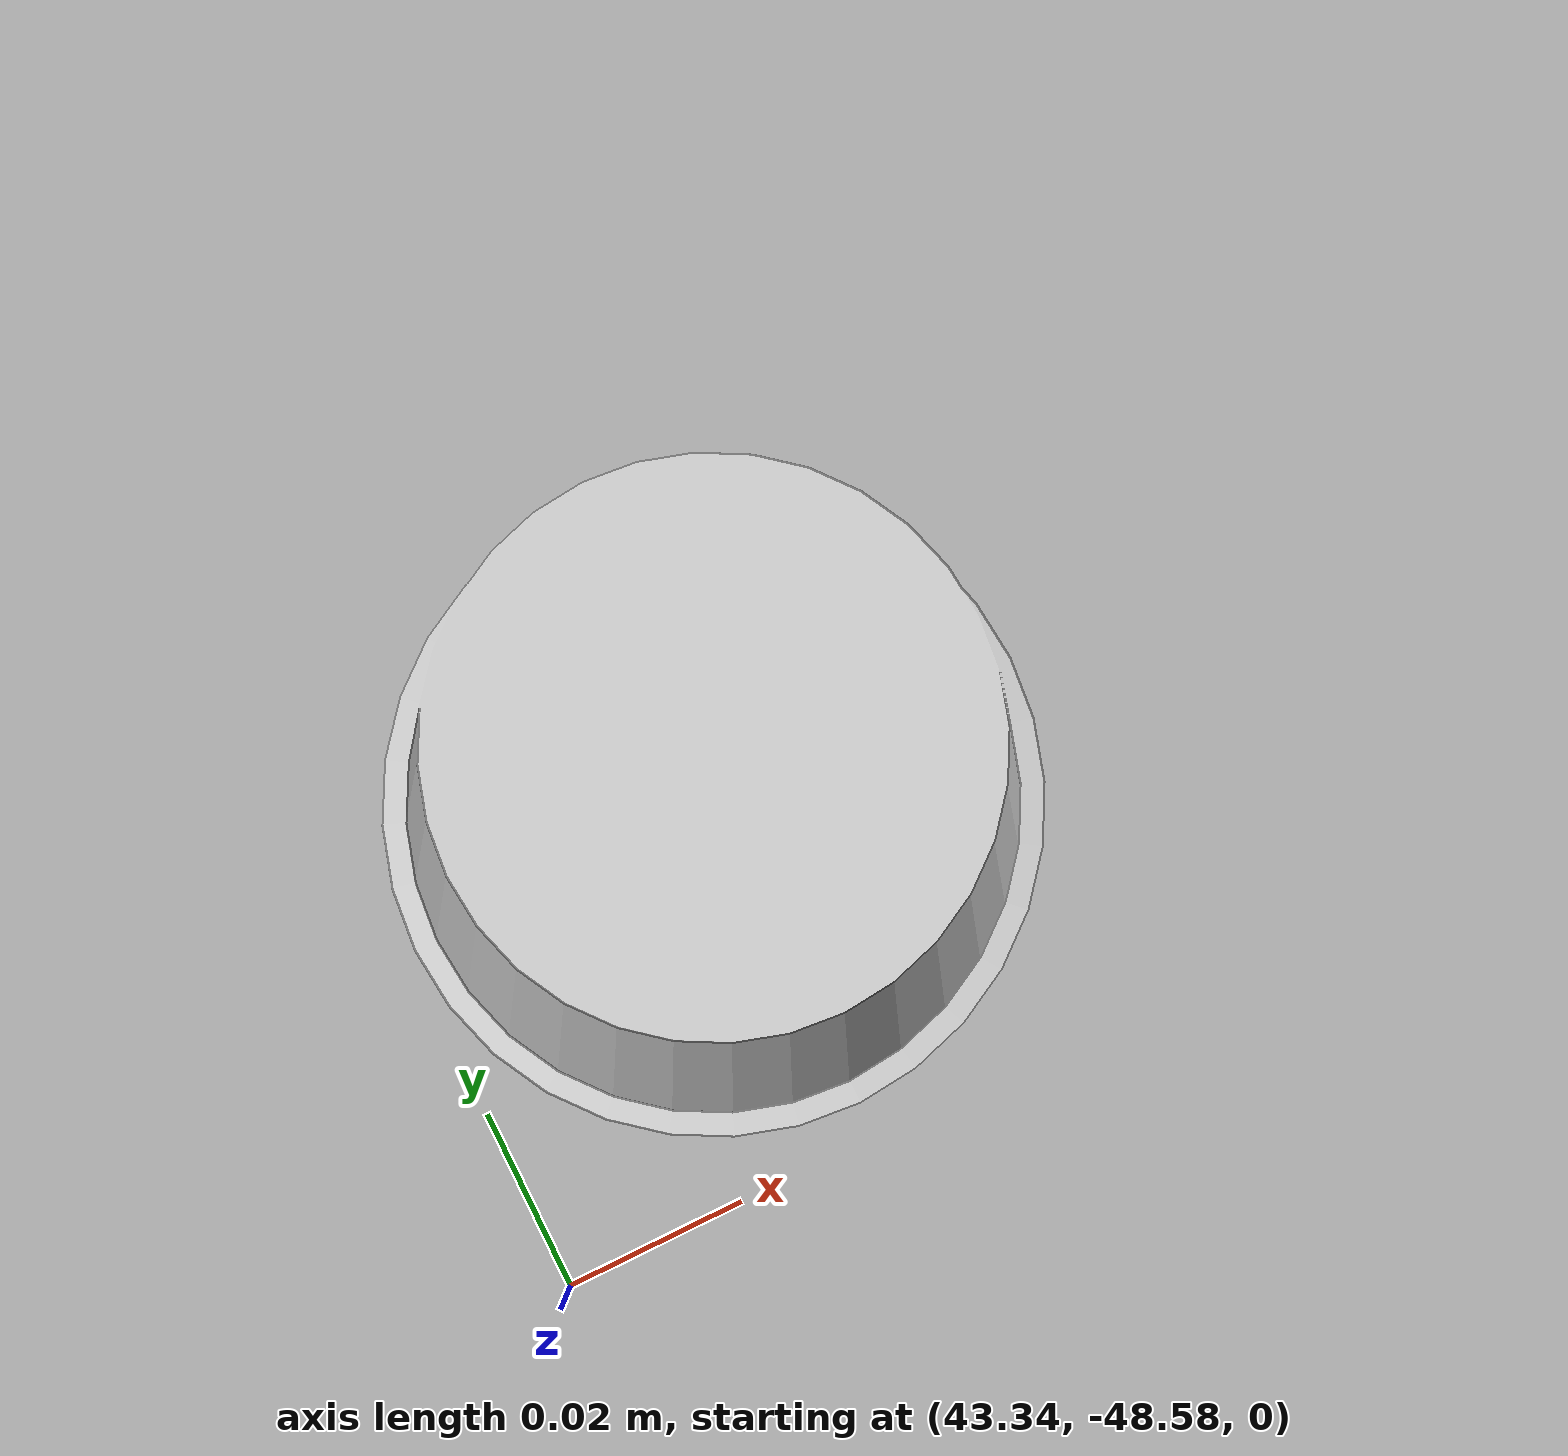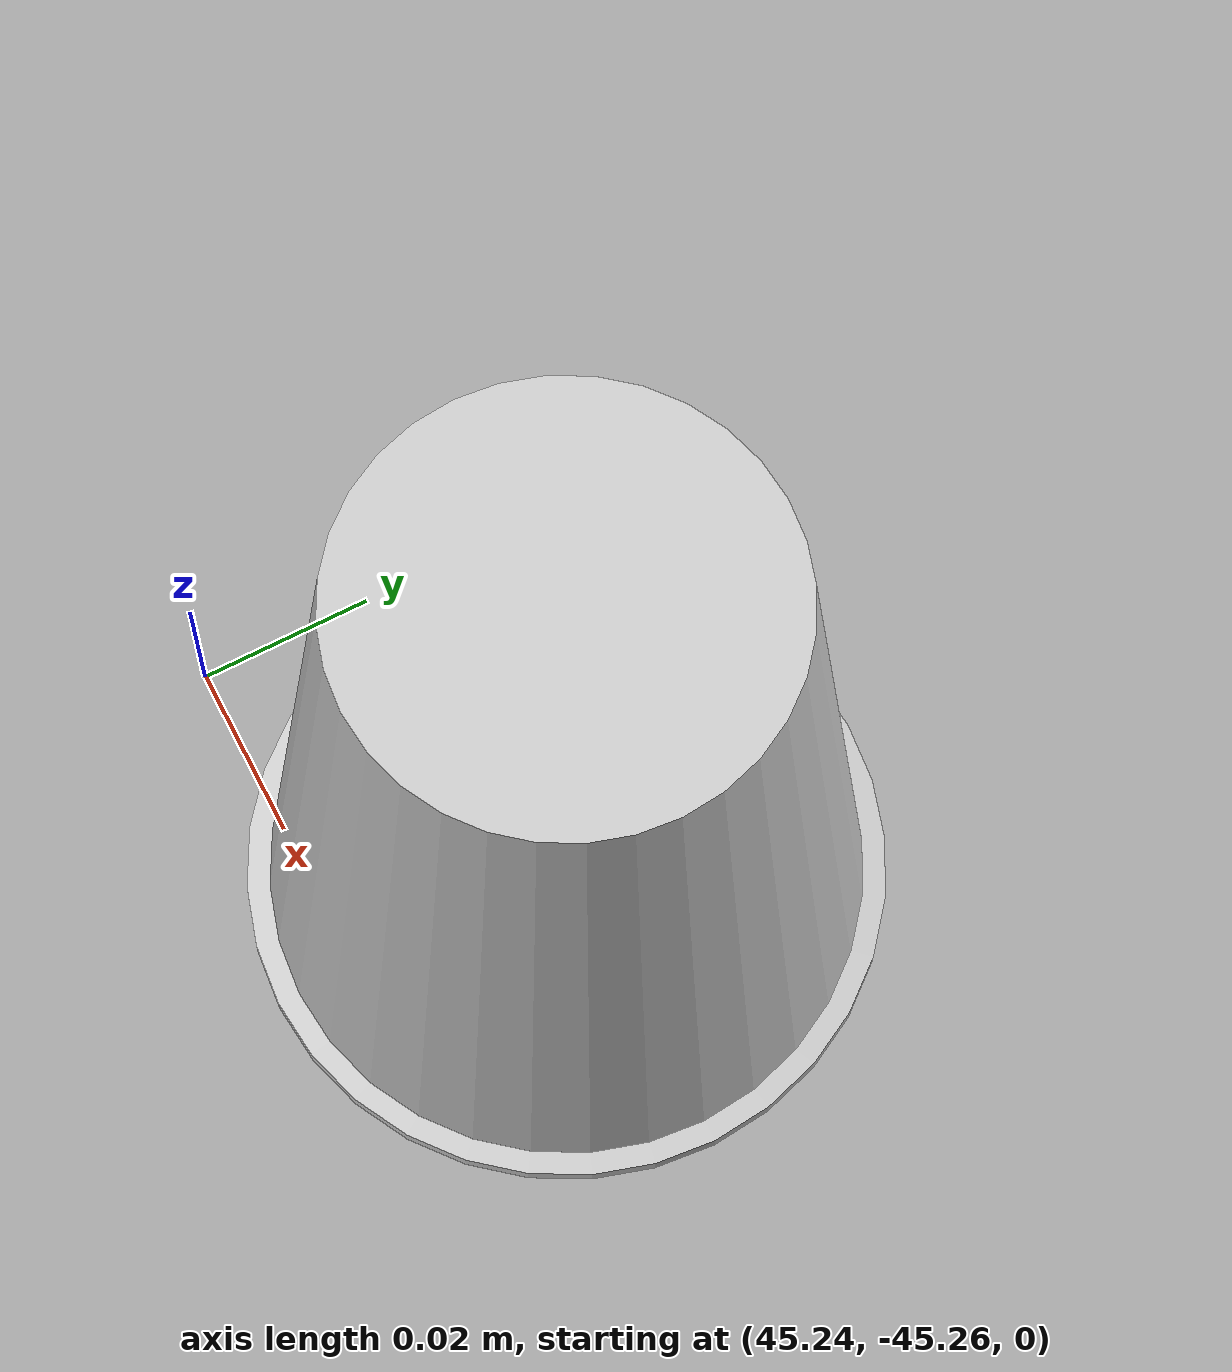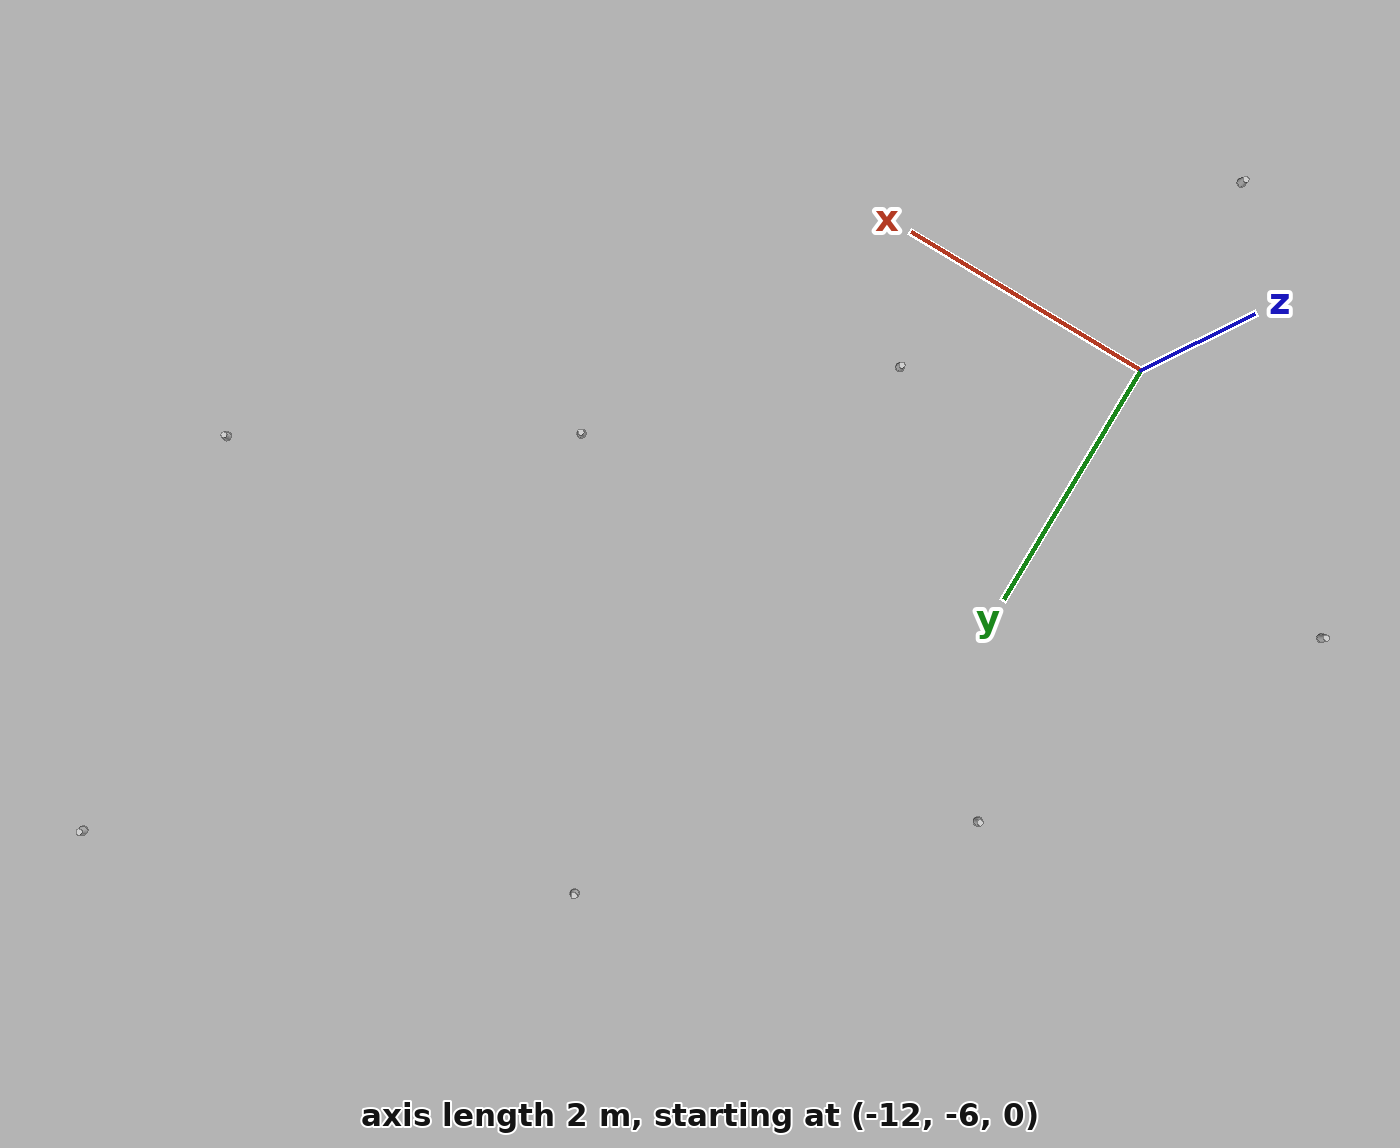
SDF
<?xml version='1.0' encoding='UTF-8'?>
<sdf version="1.4">
  <model name="some track">
    <include>
      <uri>model://cone_yellow</uri>
      <pose>4.016633257935067 -1.7042488960355349 0 0 0 0</pose>
      <name>cone_right</name>
    </include>
    <include>
      <uri>model://cone_yellow</uri>
      <pose>7.807787396695257 -2.3192877109654737 0 0 0 0</pose>
      <name>cone_right</name>
    </include>
    <include>
      <uri>model://cone_yellow</uri>
      <pose>10.70273189557841 -4.247341019404462 0 0 0 0</pose>
      <name>cone_right</name>
    </include>
    <include>
      <uri>model://cone_yellow</uri>
      <pose>12.614284638944838 -7.186668295840848 0 0 0 0</pose>
      <name>cone_right</name>
    </include>
    <include>
      <uri>model://cone_yellow</uri>
      <pose>13.41599155651475 -10.591521635098303 0 0 0 0</pose>
      <name>cone_right</name>
    </include>
    <include>
      <uri>model://cone_yellow</uri>
      <pose>14.333930177347527 -14.452732447040596 0 0 0 0</pose>
      <name>cone_right</name>
    </include>
    <include>
      <uri>model://cone_yellow</uri>
      <pose>15.297510910633767 -18.512037058971032 0 0 0 0</pose>
      <name>cone_right</name>
    </include>
    <include>
      <uri>model://cone_yellow</uri>
      <pose>16.629951078886382 -22.552195208824223 0 0 0 0</pose>
      <name>cone_right</name>
    </include>
    <include>
      <uri>model://cone_yellow</uri>
      <pose>24.768174219687882 -27.174490341212227 0 0 0 0</pose>
      <name>cone_right</name>
    </include>
    <include>
      <uri>model://cone_yellow</uri>
      <pose>28.796021756993248 -28.081478601205628 0 0 0 0</pose>
      <name>cone_right</name>
    </include>
    <include>
      <uri>model://cone_yellow</uri>
      <pose>32.72763841182436 -29.11269529682348 0 0 0 0</pose>
      <name>cone_right</name>
    </include>
    <include>
      <uri>model://cone_yellow</uri>
      <pose>41.46431769941738 -27.87742427210796 0 0 0 0</pose>
      <name>cone_right</name>
    </include>
    <include>
      <uri>model://cone_yellow</uri>
      <pose>46.880692206345906 -30.97590089180218 0 0 0 0</pose>
      <name>cone_right</name>
    </include>
    <include>
      <uri>model://cone_yellow</uri>
      <pose>47.572905593306416 -34.22353262884533 0 0 0 0</pose>
      <name>cone_right</name>
    </include>
    <include>
      <uri>model://cone_yellow</uri>
      <pose>47.252435623201876 -37.73201334105033 0 0 0 0</pose>
      <name>cone_right</name>
    </include>
    <include>
      <uri>model://cone_yellow</uri>
      <pose>46.38686972369829 -41.452612168465784 0 0 0 0</pose>
      <name>cone_right</name>
    </include>
    <include>
      <uri>model://cone_yellow</uri>
      <pose>45.278204668787446 -45.234381133229896 0 0 0 0</pose>
      <name>cone_right</name>
    </include>
    <include>
      <uri>model://cone_yellow</uri>
      <pose>43.375843219123006 -48.541064949294544 0 0 0 0</pose>
      <name>cone_right</name>
    </include>
    <include>
      <uri>model://cone_yellow</uri>
      <pose>40.59232080140645 -49.922333994551586 0 0 0 0</pose>
      <name>cone_right</name>
    </include>
    <include>
      <uri>model://cone_yellow</uri>
      <pose>35.52844617664533 -47.153467004760806 0 0 0 0</pose>
      <name>cone_right</name>
    </include>
    <include>
      <uri>model://cone_yellow</uri>
      <pose>34.81066937539569 -43.878584269161905 0 0 0 0</pose>
      <name>cone_right</name>
    </include>
    <include>
      <uri>model://cone_yellow</uri>
      <pose>33.339851593680024 -39.97824347966362 0 0 0 0</pose>
      <name>cone_right</name>
    </include>
    <include>
      <uri>model://cone_yellow</uri>
      <pose>31.179743160429513 -36.24911773490069 0 0 0 0</pose>
      <name>cone_right</name>
    </include>
    <include>
      <uri>model://cone_yellow</uri>
      <pose>27.830211307908606 -33.11544310898994 0 0 0 0</pose>
      <name>cone_right</name>
    </include>
    <include>
      <uri>model://cone_yellow</uri>
      <pose>23.99248315415697 -30.881729042462933 0 0 0 0</pose>
      <name>cone_right</name>
    </include>
    <include>
      <uri>model://cone_yellow</uri>
      <pose>19.979036396931217 -29.38713920288647 0 0 0 0</pose>
      <name>cone_right</name>
    </include>
    <include>
      <uri>model://cone_yellow</uri>
      <pose>15.8791496556233 -28.245889319297287 0 0 0 0</pose>
      <name>cone_right</name>
    </include>
    <include>
      <uri>model://cone_yellow</uri>
      <pose>11.624007426421665 -27.386126143751852 0 0 0 0</pose>
      <name>cone_right</name>
    </include>
    <include>
      <uri>model://cone_yellow</uri>
      <pose>3.425905654413868 -31.424114495551446 0 0 0 0</pose>
      <name>cone_right</name>
    </include>
    <include>
      <uri>model://cone_yellow</uri>
      <pose>0.6132255933542867 -34.80931036340649 0 0 0 0</pose>
      <name>cone_right</name>
    </include>
    <include>
      <uri>model://cone_yellow</uri>
      <pose>-1.7316698593155349 -38.246188152714005 0 0 0 0</pose>
      <name>cone_right</name>
    </include>
    <include>
      <uri>model://cone_yellow</uri>
      <pose>-3.5860590779807624 -42.00991121154241 0 0 0 0</pose>
      <name>cone_right</name>
    </include>
    <include>
      <uri>model://cone_yellow</uri>
      <pose>-5.066786551680005 -45.924165233006114 0 0 0 0</pose>
      <name>cone_right</name>
    </include>
    <include>
      <uri>model://cone_yellow</uri>
      <pose>-6.579335747946277 -49.712631094111075 0 0 0 0</pose>
      <name>cone_right</name>
    </include>
    <include>
      <uri>model://cone_yellow</uri>
      <pose>-8.526754198466778 -53.163422284748954 0 0 0 0</pose>
      <name>cone_right</name>
    </include>
    <include>
      <uri>model://cone_yellow</uri>
      <pose>-11.119816781987117 -55.70165310205272 0 0 0 0</pose>
      <name>cone_right</name>
    </include>
    <include>
      <uri>model://cone_yellow</uri>
      <pose>-14.346628206659652 -56.7512808025184 0 0 0 0</pose>
      <name>cone_right</name>
    </include>
    <include>
      <uri>model://cone_yellow</uri>
      <pose>-17.610250694613537 -56.163866050791675 0 0 0 0</pose>
      <name>cone_right</name>
    </include>
    <include>
      <uri>model://cone_yellow</uri>
      <pose>-20.41020975684232 -54.17749367735474 0 0 0 0</pose>
      <name>cone_right</name>
    </include>
    <include>
      <uri>model://cone_yellow</uri>
      <pose>-22.611202695684778 -51.33509539129395 0 0 0 0</pose>
      <name>cone_right</name>
    </include>
    <include>
      <uri>model://cone_yellow</uri>
      <pose>-24.26160726778396 -48.00790453257208 0 0 0 0</pose>
      <name>cone_right</name>
    </include>
    <include>
      <uri>model://cone_yellow</uri>
      <pose>-25.65681008625586 -44.364604210206494 0 0 0 0</pose>
      <name>cone_right</name>
    </include>
    <include>
      <uri>model://cone_yellow</uri>
      <pose>-26.679234155614544 -40.603182048810815 0 0 0 0</pose>
      <name>cone_right</name>
    </include>
    <include>
      <uri>model://cone_yellow</uri>
      <pose>-27.24983324079663 -36.77677879790706 0 0 0 0</pose>
      <name>cone_right</name>
    </include>
    <include>
      <uri>model://cone_yellow</uri>
      <pose>-27.530441710199433 -32.85165317868586 0 0 0 0</pose>
      <name>cone_right</name>
    </include>
    <include>
      <uri>model://cone_yellow</uri>
      <pose>-27.800759345626552 -28.841571678061985 0 0 0 0</pose>
      <name>cone_right</name>
    </include>
    <include>
      <uri>model://cone_yellow</uri>
      <pose>-28.17622914504249 -24.793430232454167 0 0 0 0</pose>
      <name>cone_right</name>
    </include>
    <include>
      <uri>model://cone_yellow</uri>
      <pose>-28.573962423229936 -20.65991161596328 0 0 0 0</pose>
      <name>cone_right</name>
    </include>
    <include>
      <uri>model://cone_yellow</uri>
      <pose>-29.300555554557196 -16.435196864742935 0 0 0 0</pose>
      <name>cone_right</name>
    </include>
    <include>
      <uri>model://cone_yellow</uri>
      <pose>-35.5485337607309 -9.731440607634285 0 0 0 0</pose>
      <name>cone_right</name>
    </include>
    <include>
      <uri>model://cone_yellow</uri>
      <pose>-44.62675523787628 -9.344540037681911 0 0 0 0</pose>
      <name>cone_right</name>
    </include>
    <include>
      <uri>model://cone_yellow</uri>
      <pose>-48.56649288324214 -9.438959337510092 0 0 0 0</pose>
      <name>cone_right</name>
    </include>
    <include>
      <uri>model://cone_yellow</uri>
      <pose>-54.901416368877705 -7.298260184370646 0 0 0 0</pose>
      <name>cone_right</name>
    </include>
    <include>
      <uri>model://cone_yellow</uri>
      <pose>-56.51731377310125 -4.0938047303237735 0 0 0 0</pose>
      <name>cone_right</name>
    </include>
    <include>
      <uri>model://cone_yellow</uri>
      <pose>-38.47531187371874 -0.29547417276689414 0 0 0 0</pose>
      <name>cone_right</name>
    </include>
    <include>
      <uri>model://cone_yellow</uri>
      <pose>-35.67329428653997 -3.138058325660965 0 0 0 0</pose>
      <name>cone_right</name>
    </include>
    <include>
      <uri>model://cone_yellow</uri>
      <pose>-33.14834288278659 -6.148322561516451 0 0 0 0</pose>
      <name>cone_right</name>
    </include>
    <include>
      <uri>model://cone_yellow</uri>
      <pose>-30.890283289375162 -9.340144778413631 0 0 0 0</pose>
      <name>cone_right</name>
    </include>
    <include>
      <uri>model://cone_yellow</uri>
      <pose>-28.853769730251447 -12.753293274964909 0 0 0 0</pose>
      <name>cone_right</name>
    </include>
    <include>
      <uri>model://cone_yellow</uri>
      <pose>-27.333719571161236 -16.314910883804004 0 0 0 0</pose>
      <name>cone_right</name>
    </include>
    <include>
      <uri>model://cone_yellow</uri>
      <pose>-26.84322514898085 -19.87745291325841 0 0 0 0</pose>
      <name>cone_right</name>
    </include>
    <include>
      <uri>model://cone_yellow</uri>
      <pose>-26.914808142956055 -23.683764743695196 0 0 0 0</pose>
      <name>cone_right</name>
    </include>
    <include>
      <uri>model://cone_yellow</uri>
      <pose>-26.365470697756876 -27.93850365923331 0 0 0 0</pose>
      <name>cone_right</name>
    </include>
    <include>
      <uri>model://cone_yellow</uri>
      <pose>-24.99809550898046 -32.10079961265011 0 0 0 0</pose>
      <name>cone_right</name>
    </include>
    <include>
      <uri>model://cone_yellow</uri>
      <pose>-23.633648668435452 -35.83196901263069 0 0 0 0</pose>
      <name>cone_right</name>
    </include>
    <include>
      <uri>model://cone_yellow</uri>
      <pose>-22.18276948830579 -39.64105852086057 0 0 0 0</pose>
      <name>cone_right</name>
    </include>
    <include>
      <uri>model://cone_yellow</uri>
      <pose>-7.879239039991343 -46.297502603852955 0 0 0 0</pose>
      <name>cone_right</name>
    </include>
    <include>
      <uri>model://cone_yellow</uri>
      <pose>-5.191340184367389 -41.40849674218456 0 0 0 0</pose>
      <name>cone_right</name>
    </include>
    <include>
      <uri>model://cone_yellow</uri>
      <pose>-5.318716625680469 -32.53778440303023 0 0 0 0</pose>
      <name>cone_right</name>
    </include>
    <include>
      <uri>model://cone_yellow</uri>
      <pose>-7.217504238258462 -28.560255430963398 0 0 0 0</pose>
      <name>cone_right</name>
    </include>
    <include>
      <uri>model://cone_yellow</uri>
      <pose>-8.475825188457115 -24.910561992595472 0 0 0 0</pose>
      <name>cone_right</name>
    </include>
    <include>
      <uri>model://cone_yellow</uri>
      <pose>-12.430392682297562 -17.396296318292514 0 0 0 0</pose>
      <name>cone_right</name>
    </include>
    <include>
      <uri>model://cone_yellow</uri>
      <pose>-11.916227535809204 -7.612266665163528 0 0 0 0</pose>
      <name>cone_right</name>
    </include>
    <include>
      <uri>model://cone_yellow</uri>
      <pose>-3.743567757640664 -1.7382385889287997 0 0 0 0</pose>
      <name>cone_right</name>
    </include>
    <include>
      <uri>model://cone_yellow</uri>
      <pose>18.523577008335785 -25.097905140863368 0 0 0 0</pose>
      <name>cone_right</name>
    </include>
    <include>
      <uri>model://cone_yellow</uri>
      <pose>21.478252626332726 -26.364194691433475 0 0 0 0</pose>
      <name>cone_right</name>
    </include>
    <include>
      <uri>model://cone_yellow</uri>
      <pose>36.13731290966874 -29.415600761210094 0 0 0 0</pose>
      <name>cone_right</name>
    </include>
    <include>
      <uri>model://cone_yellow</uri>
      <pose>39.08319485023117 -28.492264630586043 0 0 0 0</pose>
      <name>cone_right</name>
    </include>
    <include>
      <uri>model://cone_yellow</uri>
      <pose>44.445506069152955 -28.83118761504131 0 0 0 0</pose>
      <name>cone_right</name>
    </include>
    <include>
      <uri>model://cone_yellow</uri>
      <pose>8.346836806091762 -27.434487353150182 0 0 0 0</pose>
      <name>cone_right</name>
    </include>
    <include>
      <uri>model://cone_yellow</uri>
      <pose>5.729481582512214 -29.190434528463037 0 0 0 0</pose>
      <name>cone_right</name>
    </include>
    <include>
      <uri>model://cone_yellow</uri>
      <pose>-30.70114988818697 -13.561474391763419 0 0 0 0</pose>
      <name>cone_right</name>
    </include>
    <include>
      <uri>model://cone_yellow</uri>
      <pose>-32.81745452390035 -11.37462626819294 0 0 0 0</pose>
      <name>cone_right</name>
    </include>
    <include>
      <uri>model://cone_yellow</uri>
      <pose>-38.21403134496944 -9.187778144622463 0 0 0 0</pose>
      <name>cone_right</name>
    </include>
    <include>
      <uri>model://cone_yellow</uri>
      <pose>-41.00049911532537 -9.293593376408133 0 0 0 0</pose>
      <name>cone_right</name>
    </include>
    <include>
      <uri>model://cone_yellow</uri>
      <pose>-51.2375816629105 -9.44202735636442 0 0 0 0</pose>
      <name>cone_right</name>
    </include>
    <include>
      <uri>model://cone_yellow</uri>
      <pose>-52.981761618144986 -8.777577849608427 0 0 0 0</pose>
      <name>cone_right</name>
    </include>
    <include>
      <uri>model://cone_yellow</uri>
      <pose>-56.885402470336444 -0.8595545607661919 0 0 0 0</pose>
      <name>cone_right</name>
    </include>
    <include>
      <uri>model://cone_yellow</uri>
      <pose>-44.852348794384255 5.3119816564986735 0 0 0 0</pose>
      <name>cone_right</name>
    </include>
    <include>
      <uri>model://cone_yellow</uri>
      <pose>-42.97781676577577 3.7258391707530336 0 0 0 0</pose>
      <name>cone_right</name>
    </include>
    <include>
      <uri>model://cone_yellow</uri>
      <pose>-54.436043993532024 3.822720032808519 0 0 0 0</pose>
      <name>cone_right</name>
    </include>
    <include>
      <uri>model://cone_yellow</uri>
      <pose>-52.5585079071854 5.105703025145388 0 0 0 0</pose>
      <name>cone_right</name>
    </include>
    <include>
      <uri>model://cone_yellow</uri>
      <pose>-55.95176322990561 1.7183150026950003 0 0 0 0</pose>
      <name>cone_right</name>
    </include>
    <include>
      <uri>model://cone_yellow</uri>
      <pose>-49.90518434071636 5.7520839382053595 0 0 0 0</pose>
      <name>cone_right</name>
    </include>
    <include>
      <uri>model://cone_yellow</uri>
      <pose>-47.29749533190157 5.79282907896809 0 0 0 0</pose>
      <name>cone_right</name>
    </include>
    <include>
      <uri>model://cone_yellow</uri>
      <pose>-40.73752766910191 1.7183150026950003 0 0 0 0</pose>
      <name>cone_right</name>
    </include>
    <include>
      <uri>model://cone_yellow</uri>
      <pose>-15.14957927010694 -47.86852130554848 0 0 0 0</pose>
      <name>cone_right</name>
    </include>
    <include>
      <uri>model://cone_yellow</uri>
      <pose>-12.338164557478507 -48.0315018685994 0 0 0 0</pose>
      <name>cone_right</name>
    </include>
    <include>
      <uri>model://cone_yellow</uri>
      <pose>-9.974946393240117 -47.42032475715843 0 0 0 0</pose>
      <name>cone_right</name>
    </include>
    <include>
      <uri>model://cone_yellow</uri>
      <pose>-6.307883724594333 -43.95698779232631 0 0 0 0</pose>
      <name>cone_right</name>
    </include>
    <include>
      <uri>model://cone_yellow</uri>
      <pose>-4.4743523902714415 -35.44125337291556 0 0 0 0</pose>
      <name>cone_right</name>
    </include>
    <include>
      <uri>model://cone_yellow</uri>
      <pose>-20.500774423612256 -42.60560729036239 0 0 0 0</pose>
      <name>cone_right</name>
    </include>
    <include>
      <uri>model://cone_yellow</uri>
      <pose>-19.074694496916678 -44.54100147659212 0 0 0 0</pose>
      <name>cone_right</name>
    </include>
    <include>
      <uri>model://cone_yellow</uri>
      <pose>-17.30907173053167 -46.61221279869759 0 0 0 0</pose>
      <name>cone_right</name>
    </include>
    <include>
      <uri>model://cone_yellow</uri>
      <pose>-4.4743523902714415 -38.46318464615144 0 0 0 0</pose>
      <name>cone_right</name>
    </include>
    <include>
      <uri>model://cone_yellow</uri>
      <pose>-9.36376928179915 -22.266991192965918 0 0 0 0</pose>
      <name>cone_right</name>
    </include>
    <include>
      <uri>model://cone_yellow</uri>
      <pose>-10.687986356587892 -19.890191315139937 0 0 0 0</pose>
      <name>cone_right</name>
    </include>
    <include>
      <uri>model://cone_yellow</uri>
      <pose>-13.03083195044492 -14.966820139643296 0 0 0 0</pose>
      <name>cone_right</name>
    </include>
    <include>
      <uri>model://cone_yellow</uri>
      <pose>-13.13269480235175 -12.623974545786268 0 0 0 0</pose>
      <name>cone_right</name>
    </include>
    <include>
      <uri>model://cone_yellow</uri>
      <pose>-12.895014814569151 -10.179266100022424 0 0 0 0</pose>
      <name>cone_right</name>
    </include>
    <include>
      <uri>model://cone_yellow</uri>
      <pose>-10.4503063688053 -5.086123504681062 0 0 0 0</pose>
      <name>cone_right</name>
    </include>
    <include>
      <uri>model://cone_yellow</uri>
      <pose>-8.684683602420293 -3.4223635902028846 0 0 0 0</pose>
      <name>cone_right</name>
    </include>
    <include>
      <uri>model://cone_yellow</uri>
      <pose>-6.443700860470095 -2.0302379474762517 0 0 0 0</pose>
      <name>cone_right</name>
    </include>
    <include>
      <uri>model://cone_yellow</uri>
      <pose>37.83268543503077 -49.277624090259586 0 0 0 0</pose>
      <name>cone_right</name>
    </include>
    <include>
      <uri>model://cone_blue</uri>
      <pose>4.080490137880218 1.5451237047727613 0 0 0 0</pose>
      <name>cone_left</name>
    </include>
    <include>
      <uri>model://cone_blue</uri>
      <pose>8.315470926801819 0.890814691335509 0 0 0 0</pose>
      <name>cone_left</name>
    </include>
    <include>
      <uri>model://cone_blue</uri>
      <pose>16.55670322292808 -9.755800253024578 0 0 0 0</pose>
      <name>cone_left</name>
    </include>
    <include>
      <uri>model://cone_blue</uri>
      <pose>17.49569973383057 -13.700593316495578 0 0 0 0</pose>
      <name>cone_left</name>
    </include>
    <include>
      <uri>model://cone_blue</uri>
      <pose>18.459642929842612 -17.761423248084107 0 0 0 0</pose>
      <name>cone_left</name>
    </include>
    <include>
      <uri>model://cone_blue</uri>
      <pose>22.156368898114167 -23.21482403427852 0 0 0 0</pose>
      <name>cone_left</name>
    </include>
    <include>
      <uri>model://cone_blue</uri>
      <pose>25.642310607357455 -24.044253037787456 0 0 0 0</pose>
      <name>cone_left</name>
    </include>
    <include>
      <uri>model://cone_blue</uri>
      <pose>29.50833263951875 -24.91049875159514 0 0 0 0</pose>
      <name>cone_left</name>
    </include>
    <include>
      <uri>model://cone_blue</uri>
      <pose>33.55140166966561 -25.968826009618493 0 0 0 0</pose>
      <name>cone_left</name>
    </include>
    <include>
      <uri>model://cone_blue</uri>
      <pose>37.037901206704134 -25.800320849279835 0 0 0 0</pose>
      <name>cone_left</name>
    </include>
    <include>
      <uri>model://cone_blue</uri>
      <pose>40.58163032476929 -24.749587479908456 0 0 0 0</pose>
      <name>cone_left</name>
    </include>
    <include>
      <uri>model://cone_blue</uri>
      <pose>49.13948155099474 -28.639157282310347 0 0 0 0</pose>
      <name>cone_left</name>
    </include>
    <include>
      <uri>model://cone_blue</uri>
      <pose>50.495665080938196 -37.94168614441631 0 0 0 0</pose>
      <name>cone_left</name>
    </include>
    <include>
      <uri>model://cone_blue</uri>
      <pose>49.55622767786709 -42.17210515546909 0 0 0 0</pose>
      <name>cone_left</name>
    </include>
    <include>
      <uri>model://cone_blue</uri>
      <pose>48.39765356634343 -46.14626850321415 0 0 0 0</pose>
      <name>cone_left</name>
    </include>
    <include>
      <uri>model://cone_blue</uri>
      <pose>46.21041965170465 -50.130931751216245 0 0 0 0</pose>
      <name>cone_left</name>
    </include>
    <include>
      <uri>model://cone_blue</uri>
      <pose>37.09553778043162 -52.558693520610284 0 0 0 0</pose>
      <name>cone_left</name>
    </include>
    <include>
      <uri>model://cone_blue</uri>
      <pose>33.3276642606109 -49.54492241058711 0 0 0 0</pose>
      <name>cone_left</name>
    </include>
    <include>
      <uri>model://cone_blue</uri>
      <pose>31.69196010997545 -44.79299802550088 0 0 0 0</pose>
      <name>cone_left</name>
    </include>
    <include>
      <uri>model://cone_blue</uri>
      <pose>30.30019714224876 -41.12846120509393 0 0 0 0</pose>
      <name>cone_left</name>
    </include>
    <include>
      <uri>model://cone_blue</uri>
      <pose>28.376232887565376 -37.893146369062904 0 0 0 0</pose>
      <name>cone_left</name>
    </include>
    <include>
      <uri>model://cone_blue</uri>
      <pose>25.648863765419435 -35.52463859688138 0 0 0 0</pose>
      <name>cone_left</name>
    </include>
    <include>
      <uri>model://cone_blue</uri>
      <pose>22.381846226681432 -33.70455540762466 0 0 0 0</pose>
      <name>cone_left</name>
    </include>
    <include>
      <uri>model://cone_blue</uri>
      <pose>18.860996462449645 -32.43877592846579 0 0 0 0</pose>
      <name>cone_left</name>
    </include>
    <include>
      <uri>model://cone_blue</uri>
      <pose>15.011526486967833 -31.3779381754316 0 0 0 0</pose>
      <name>cone_left</name>
    </include>
    <include>
      <uri>model://cone_blue</uri>
      <pose>10.98341915012716 -30.57236948980595 0 0 0 0</pose>
      <name>cone_left</name>
    </include>
    <include>
      <uri>model://cone_blue</uri>
      <pose>7.932662340817771 -31.405175012001695 0 0 0 0</pose>
      <name>cone_left</name>
    </include>
    <include>
      <uri>model://cone_blue</uri>
      <pose>5.62415243104691 -33.81790043189213 0 0 0 0</pose>
      <name>cone_left</name>
    </include>
    <include>
      <uri>model://cone_blue</uri>
      <pose>3.1202570785858166 -36.87747213949118 0 0 0 0</pose>
      <name>cone_left</name>
    </include>
    <include>
      <uri>model://cone_blue</uri>
      <pose>0.9560669159754768 -40.07336384945153 0 0 0 0</pose>
      <name>cone_left</name>
    </include>
    <include>
      <uri>model://cone_blue</uri>
      <pose>-0.6650351681730116 -43.434733768330254 0 0 0 0</pose>
      <name>cone_left</name>
    </include>
    <include>
      <uri>model://cone_blue</uri>
      <pose>-2.0250565651638874 -47.06888296639223 0 0 0 0</pose>
      <name>cone_left</name>
    </include>
    <include>
      <uri>model://cone_blue</uri>
      <pose>-3.5609132233787237 -50.91746529979385 0 0 0 0</pose>
      <name>cone_left</name>
    </include>
    <include>
      <uri>model://cone_blue</uri>
      <pose>-8.809130847866003 -57.98709190321429 0 0 0 0</pose>
      <name>cone_left</name>
    </include>
    <include>
      <uri>model://cone_blue</uri>
      <pose>-18.007210642695565 -59.389532307492566 0 0 0 0</pose>
      <name>cone_left</name>
    </include>
    <include>
      <uri>model://cone_blue</uri>
      <pose>-25.134881863602157 -53.382909703535134 0 0 0 0</pose>
      <name>cone_left</name>
    </include>
    <include>
      <uri>model://cone_blue</uri>
      <pose>-27.15888486624211 -49.48041345189059 0 0 0 0</pose>
      <name>cone_left</name>
    </include>
    <include>
      <uri>model://cone_blue</uri>
      <pose>-28.689334361474124 -45.5334910824965 0 0 0 0</pose>
      <name>cone_left</name>
    </include>
    <include>
      <uri>model://cone_blue</uri>
      <pose>-29.81364250566375 -41.46224217193481 0 0 0 0</pose>
      <name>cone_left</name>
    </include>
    <include>
      <uri>model://cone_blue</uri>
      <pose>-30.462908740110375 -37.26529270324621 0 0 0 0</pose>
      <name>cone_left</name>
    </include>
    <include>
      <uri>model://cone_blue</uri>
      <pose>-30.77187281424696 -33.087501430138396 0 0 0 0</pose>
      <name>cone_left</name>
    </include>
    <include>
      <uri>model://cone_blue</uri>
      <pose>-31.04339909691538 -29.060175070902798 0 0 0 0</pose>
      <name>cone_left</name>
    </include>
    <include>
      <uri>model://cone_blue</uri>
      <pose>-31.412300763498777 -25.09399716380511 0 0 0 0</pose>
      <name>cone_left</name>
    </include>
    <include>
      <uri>model://cone_blue</uri>
      <pose>-31.80902024607508 -20.971200682344403 0 0 0 0</pose>
      <name>cone_left</name>
    </include>
    <include>
      <uri>model://cone_blue</uri>
      <pose>-32.50293362057321 -16.989520526784837 0 0 0 0</pose>
      <name>cone_left</name>
    </include>
    <include>
      <uri>model://cone_blue</uri>
      <pose>-34.27533932350017 -14.082972609791724 0 0 0 0</pose>
      <name>cone_left</name>
    </include>
    <include>
      <uri>model://cone_blue</uri>
      <pose>-37.2436576872284 -12.50435511656089 0 0 0 0</pose>
      <name>cone_left</name>
    </include>
    <include>
      <uri>model://cone_blue</uri>
      <pose>-40.66454775760732 -12.229437542119095 0 0 0 0</pose>
      <name>cone_left</name>
    </include>
    <include>
      <uri>model://cone_blue</uri>
      <pose>-44.34742030915551 -12.582513477597155 0 0 0 0</pose>
      <name>cone_left</name>
    </include>
    <include>
      <uri>model://cone_blue</uri>
      <pose>-48.48610819692016 -12.687965078072104 0 0 0 0</pose>
      <name>cone_left</name>
    </include>
    <include>
      <uri>model://cone_blue</uri>
      <pose>-56.76892526226462 -9.958130582175924 0 0 0 0</pose>
      <name>cone_left</name>
    </include>
    <include>
      <uri>model://cone_blue</uri>
      <pose>-56.06901171984407 7.013456953871114 0 0 0 0</pose>
      <name>cone_left</name>
    </include>
    <include>
      <uri>model://cone_blue</uri>
      <pose>-36.243130167498194 2.066699578339135 0 0 0 0</pose>
      <name>cone_left</name>
    </include>
    <include>
      <uri>model://cone_blue</uri>
      <pose>-33.35931720947697 -0.8559518235829093 0 0 0 0</pose>
      <name>cone_left</name>
    </include>
    <include>
      <uri>model://cone_blue</uri>
      <pose>-30.66101881595283 -4.056500631583219 0 0 0 0</pose>
      <name>cone_left</name>
    </include>
    <include>
      <uri>model://cone_blue</uri>
      <pose>-28.23973298005022 -7.459431334601028 0 0 0 0</pose>
      <name>cone_left</name>
    </include>
    <include>
      <uri>model://cone_blue</uri>
      <pose>-26.06488957457761 -11.08456697107662 0 0 0 0</pose>
      <name>cone_left</name>
    </include>
    <include>
      <uri>model://cone_blue</uri>
      <pose>-24.349258396992848 -15.028251838104081 0 0 0 0</pose>
      <name>cone_left</name>
    </include>
    <include>
      <uri>model://cone_blue</uri>
      <pose>-23.630449198407135 -19.38697285105897 0 0 0 0</pose>
      <name>cone_left</name>
    </include>
    <include>
      <uri>model://cone_blue</uri>
      <pose>-23.665084431356398 -23.72614160373659 0 0 0 0</pose>
      <name>cone_left</name>
    </include>
    <include>
      <uri>model://cone_blue</uri>
      <pose>-23.14391526437351 -27.509457519945084 0 0 0 0</pose>
      <name>cone_left</name>
    </include>
    <include>
      <uri>model://cone_blue</uri>
      <pose>-21.91741138665608 -31.0654806577099 0 0 0 0</pose>
      <name>cone_left</name>
    </include>
    <include>
      <uri>model://cone_blue</uri>
      <pose>-20.581497593821414 -34.71533397031276 0 0 0 0</pose>
      <name>cone_left</name>
    </include>
    <include>
      <uri>model://cone_blue</uri>
      <pose>-19.14567106104806 -38.48410858972758 0 0 0 0</pose>
      <name>cone_left</name>
    </include>
    <include>
      <uri>model://cone_blue</uri>
      <pose>-7.367303107697575 -36.45648067212191 0 0 0 0</pose>
      <name>cone_left</name>
    </include>
    <include>
      <uri>model://cone_blue</uri>
      <pose>-8.443132929176684 -33.43250377939751 0 0 0 0</pose>
      <name>cone_left</name>
    </include>
    <include>
      <uri>model://cone_blue</uri>
      <pose>-10.142793296991636 -29.976300600742942 0 0 0 0</pose>
      <name>cone_left</name>
    </include>
    <include>
      <uri>model://cone_blue</uri>
      <pose>-11.545329675038651 -25.978570516370358 0 0 0 0</pose>
      <name>cone_left</name>
    </include>
    <include>
      <uri>model://cone_blue</uri>
      <pose>-12.807426651569473 -22.06515496336369 0 0 0 0</pose>
      <name>cone_left</name>
    </include>
    <include>
      <uri>model://cone_blue</uri>
      <pose>-12.673791818437435 -2.501020556513588 0 0 0 0</pose>
      <name>cone_left</name>
    </include>
    <include>
      <uri>model://cone_blue</uri>
      <pose>19.948152752727168 -20.718653778475044 0 0 0 0</pose>
      <name>cone_left</name>
    </include>
    <include>
      <uri>model://cone_blue</uri>
      <pose>44.445506069152955 -25.02975414074588 0 0 0 0</pose>
      <name>cone_left</name>
    </include>
    <include>
      <uri>model://cone_blue</uri>
      <pose>47.422532283962624 -26.495367046498323 0 0 0 0</pose>
      <name>cone_left</name>
    </include>
    <include>
      <uri>model://cone_blue</uri>
      <pose>50.720161321905636 -31.716613023241443 0 0 0 0</pose>
      <name>cone_left</name>
    </include>
    <include>
      <uri>model://cone_blue</uri>
      <pose>51.04076414503898 -34.87684085127017 0 0 0 0</pose>
      <name>cone_left</name>
    </include>
    <include>
      <uri>model://cone_blue</uri>
      <pose>44.0027688372069 -52.09779249386147 0 0 0 0</pose>
      <name>cone_left</name>
    </include>
    <include>
      <uri>model://cone_blue</uri>
      <pose>41.75091567472266 -52.74663154067897 0 0 0 0</pose>
      <name>cone_left</name>
    </include>
    <include>
      <uri>model://cone_blue</uri>
      <pose>39.422728506730486 -52.8229655461869 0 0 0 0</pose>
      <name>cone_left</name>
    </include>
    <include>
      <uri>model://cone_blue</uri>
      <pose>34.95718918451598 -51.563454455305894 0 0 0 0</pose>
      <name>cone_left</name>
    </include>
    <include>
      <uri>model://cone_blue</uri>
      <pose>32.5145010082619 -47.25058314410726 0 0 0 0</pose>
      <name>cone_left</name>
    </include>
    <include>
      <uri>model://cone_blue</uri>
      <pose>-11.498679382821514 -59.24032298145858 0 0 0 0</pose>
      <name>cone_left</name>
    </include>
    <include>
      <uri>model://cone_blue</uri>
      <pose>-14.679262945652354 -59.637895926812426 0 0 0 0</pose>
      <name>cone_left</name>
    </include>
    <include>
      <uri>model://cone_blue</uri>
      <pose>-20.543463889621705 -58.21325953929445 0 0 0 0</pose>
      <name>cone_left</name>
    </include>
    <include>
      <uri>model://cone_blue</uri>
      <pose>-23.061425876862792 -56.22539481252519 0 0 0 0</pose>
      <name>cone_left</name>
    </include>
    <include>
      <uri>model://cone_blue</uri>
      <pose>-4.879653531172927 -53.66343061128007 0 0 0 0</pose>
      <name>cone_left</name>
    </include>
    <include>
      <uri>model://cone_blue</uri>
      <pose>-6.713079114673242 -56.03609901345694 0 0 0 0</pose>
      <name>cone_left</name>
    </include>
    <include>
      <uri>model://cone_blue</uri>
      <pose>-51.694390698805236 -12.764274890144371 0 0 0 0</pose>
      <name>cone_left</name>
    </include>
    <include>
      <uri>model://cone_blue</uri>
      <pose>-54.47677300834596 -12.016769195043885 0 0 0 0</pose>
      <name>cone_left</name>
    </include>
    <include>
      <uri>model://cone_blue</uri>
      <pose>-58.214301483848416 -7.656319306957691 0 0 0 0</pose>
      <name>cone_left</name>
    </include>
    <include>
      <uri>model://cone_blue</uri>
      <pose>-59.58472859153265 -4.998521279933719 0 0 0 0</pose>
      <name>cone_left</name>
    </include>
    <include>
      <uri>model://cone_blue</uri>
      <pose>-58.30427902122162 4.331457210764995 0 0 0 0</pose>
      <name>cone_left</name>
    </include>
    <include>
      <uri>model://cone_blue</uri>
      <pose>-60.17304325897287 -1.7939366796418028 0 0 0 0</pose>
      <name>cone_left</name>
    </include>
    <include>
      <uri>model://cone_blue</uri>
      <pose>-53.39588900169602 8.48426662798995 0 0 0 0</pose>
      <name>cone_left</name>
    </include>
    <include>
      <uri>model://cone_blue</uri>
      <pose>-50.13708716734587 9.205240485147062 0 0 0 0</pose>
      <name>cone_left</name>
    </include>
    <include>
      <uri>model://cone_blue</uri>
      <pose>-41.225850292884004 6.8404462336717415 0 0 0 0</pose>
      <name>cone_left</name>
    </include>
    <include>
      <uri>model://cone_blue</uri>
      <pose>-59.66836155896286 1.4547715207081353 0 0 0 0</pose>
      <name>cone_left</name>
    </include>
    <include>
      <uri>model://cone_blue</uri>
      <pose>-46.890043924274266 9.215420903037476 0 0 0 0</pose>
      <name>cone_left</name>
    </include>
    <include>
      <uri>model://cone_blue</uri>
      <pose>-43.71192294478125 8.482008369308325 0 0 0 0</pose>
      <name>cone_left</name>
    </include>
    <include>
      <uri>model://cone_blue</uri>
      <pose>-38.415054645626256 4.08153316693339 0 0 0 0</pose>
      <name>cone_left</name>
    </include>
    <include>
      <uri>model://cone_blue</uri>
      <pose>-17.27511744656273 -41.75675019113884 0 0 0 0</pose>
      <name>cone_left</name>
    </include>
    <include>
      <uri>model://cone_blue</uri>
      <pose>-15.44158611223984 -43.861915797213264 0 0 0 0</pose>
      <name>cone_left</name>
    </include>
    <include>
      <uri>model://cone_blue</uri>
      <pose>-10.178672097053763 -43.861915797213264 0 0 0 0</pose>
      <name>cone_left</name>
    </include>
    <include>
      <uri>model://cone_blue</uri>
      <pose>-8.820500738296076 -41.55302448732518 0 0 0 0</pose>
      <name>cone_left</name>
    </include>
    <include>
      <uri>model://cone_blue</uri>
      <pose>-7.835826503196742 -39.2441331774371 0 0 0 0</pose>
      <name>cone_left</name>
    </include>
    <include>
      <uri>model://cone_blue</uri>
      <pose>-12.725243394724444 -44.914498600250475 0 0 0 0</pose>
      <name>cone_left</name>
    </include>
    <include>
      <uri>model://cone_blue</uri>
      <pose>-14.864363284767812 -19.550648475450515 0 0 0 0</pose>
      <name>cone_left</name>
    </include>
    <include>
      <uri>model://cone_blue</uri>
      <pose>-16.256488927494452 -16.766397189997242 0 0 0 0</pose>
      <name>cone_left</name>
    </include>
    <include>
      <uri>model://cone_blue</uri>
      <pose>-16.629986051152812 -13.540740212947718 0 0 0 0</pose>
      <name>cone_left</name>
    </include>
    <include>
      <uri>model://cone_blue</uri>
      <pose>-16.358351779401275 -10.484854655742907 0 0 0 0</pose>
      <name>cone_left</name>
    </include>
    <include>
      <uri>model://cone_blue</uri>
      <pose>-15.475540396208778 -7.496877666475967 0 0 0 0</pose>
      <name>cone_left</name>
    </include>
    <include>
      <uri>model://cone_blue</uri>
      <pose>-14.151323321420023 -4.984260652774232 0 0 0 0</pose>
      <name>cone_left</name>
    </include>
    <include>
      <uri>model://cone_blue</uri>
      <pose>-10.416352084836355 -0.5022951688738431 0 0 0 0</pose>
      <name>cone_left</name>
    </include>
    <include>
      <uri>model://cone_blue</uri>
      <pose>-7.08883225588 0.991693325759627 0 0 0 0</pose>
      <name>cone_left</name>
    </include>
    <include>
      <uri>model://cone_blue</uri>
      <pose>-3.5236324391410534 1.5010075852937632 0 0 0 0</pose>
      <name>cone_left</name>
    </include>
    <include>
      <uri>model://cone_blue</uri>
      <pose>11.90010105375103 -0.553226594827251 0 0 0 0</pose>
      <name>cone_left</name>
    </include>
    <include>
      <uri>model://cone_blue</uri>
      <pose>14.149572366693466 -3.057355037536759 0 0 0 0</pose>
      <name>cone_left</name>
    </include>
    <include>
      <uri>model://cone_blue</uri>
      <pose>15.847286565140585 -6.240569159625103 0 0 0 0</pose>
      <name>cone_left</name>
    </include>
    <include>
      <uri>model://cone_orange_big</uri>
      <pose>-1.3 2.125 0 0 0 0</pose>
      <name>cone_orange_big</name>
    </include>
    <include>
      <uri>model://cone_orange_big</uri>
      <pose>-1.3 -2.125 0 0 0 0</pose>
      <name>cone_orange_big</name>
    </include>
    <include>
      <uri>model://cone_orange_big</uri>
      <pose>1.3 2.125 0 0 0 0</pose>
      <name>cone_orange_big</name>
    </include>
    <include>
      <uri>model://cone_orange_big</uri>
      <pose>1.3 -2.125 0 0 0 0</pose>
      <name>cone_orange_big</name>
    </include>
  </model>
</sdf>

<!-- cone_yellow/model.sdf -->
<sdf version='1.4'>
  <model name="cone_yellow">
    <link name="link">
    <collision name="collision"><geometry><box><size> 0.05 0.05 0.01</size>
             </box></geometry></collision>
      <visual name="visual">
        <geometry>
          <mesh>
            <uri>model://cup.dae</uri>
            <scale>1 1 1</scale>
          </mesh>
        </geometry>
        <material>
            <script>
              <uri>model://cone_yellow/materials/scripts</uri>
              <uri>model://cone_yellow/materials/textures</uri>
              <name>cone_yellow/Image</name>
            </script>
        </material>
      </visual>
    </link>
  </model>
</sdf>

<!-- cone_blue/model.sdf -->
<sdf version='1.4'>
  <model name="cone_blue">
    <link name="link">
    <collision name="collision"><geometry><box><size> 0.05 0.05 0.01</size>
             </box></geometry></collision>
      <visual name="visual">
        <geometry>
          <mesh>
            <uri>model://cup.dae</uri>
            <scale>1 1 1</scale>
          </mesh>
        </geometry>
        <material>
            <script>
              <uri>model://cone_blue/materials/scripts</uri>
              <uri>model://cone_blue/materials/textures</uri>
              <name>cone_blue/Image</name>
            </script>
        </material>
      </visual>
    </link>
  </model>
</sdf>

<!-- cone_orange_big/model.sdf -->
<sdf version='1.4'>
  <model name="cone_orange_big">
    <link name="link">
    <collision name="collision"><geometry><box><size> 0.05 0.05 0.01</size>
             </box></geometry></collision>
      <visual name="visual">
        <geometry>
          <mesh>
            <uri>model://cup.dae</uri>
            <scale>1 1 1</scale>
          </mesh>
        </geometry>
        <material>
            <script>
              <uri>model://cone_orange_big/materials/scripts</uri>
              <uri>model://cone_orange_big/materials/textures</uri>
              <name>cone_orange_big/Image</name>
            </script>
        </material>
      </visual>
    </link>
  </model>
</sdf>
